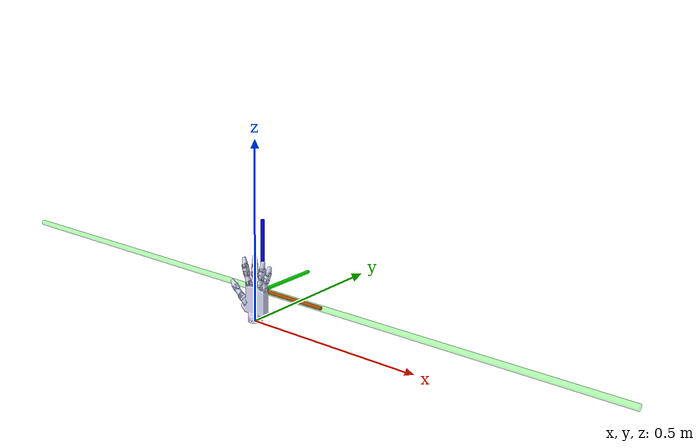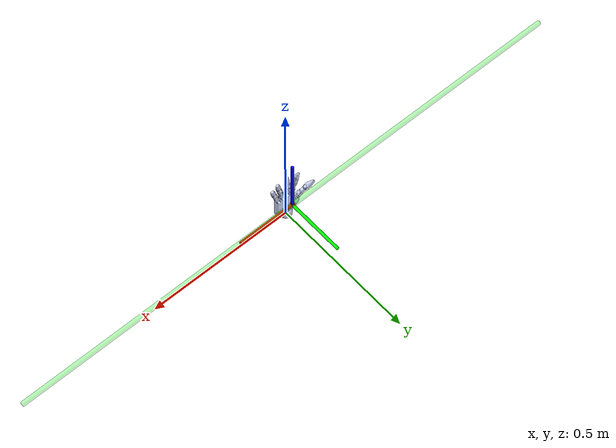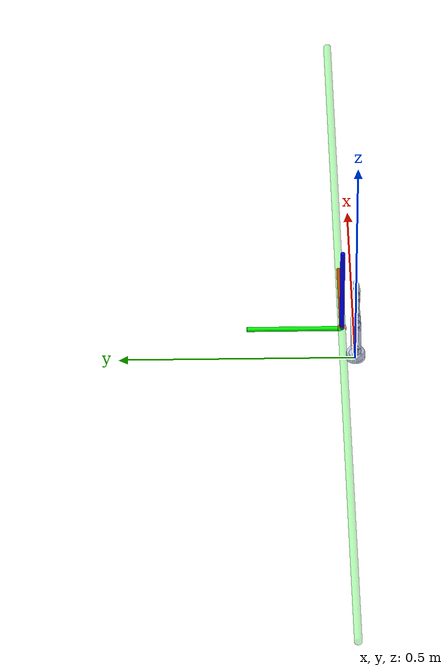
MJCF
<mujoco model="hand_right_sim">
    <compiler angle="radian" meshdir="/home/kavin/Documents/RosProjects/robot_ws/src/hand_right_sim/meshes/" />

    <default>
        <geom density="5.0" />
        <default class="joint">
            <joint axis="1 0 0" range="-3.14 3.14" limited="true" damping="0.8" armature="0.0002" frictionloss="0.01"/>
            <position kp="8" forcerange="-2 2" forcelimited="true"/>
        </default>
    </default>

    <size njmax="500" nconmax="100" />
    <asset>
        <mesh name="palm_right" file="palm_right.STL" />
        <mesh name="finger_11_right" file="finger_11_right.STL" />
        <mesh name="finger_12_right" file="finger_12_right.STL" />
        <mesh name="finger_13_right" file="finger_13_right.STL" />
        <mesh name="finger_14_right" file="finger_14_right.STL" />
        <mesh name="finger_21_right" file="finger_21_right.STL" />
        <mesh name="finger_22_right" file="finger_22_right.STL" />
        <mesh name="finger_23_right" file="finger_23_right.STL" />
        <mesh name="finger_31_right" file="finger_31_right.STL" />
        <mesh name="finger_32_right" file="finger_32_right.STL" />
        <mesh name="finger_33_right" file="finger_33_right.STL" />
        <mesh name="finger_41_right" file="finger_41_right.STL" />
        <mesh name="finger_42_right" file="finger_42_right.STL" />
        <mesh name="finger_43_right" file="finger_43_right.STL" />
        <mesh name="finger_51_right" file="finger_51_right.STL" />
        <mesh name="finger_52_right" file="finger_52_right.STL" />
        <mesh name="finger_53_right" file="finger_53_right.STL" />

    </asset>
    <worldbody>
        <body name="palm_right">
            <body name="eef" pos="0 0.03 0.08" >
                <site name="grip_site" pos="0 0 0" size="0.01 0.01 0.01" rgba="1 0 0 0.5" type="sphere" group="1"/>
                <site name="ee_x" pos="0.1 0 0" size="0.005 .1"  quat="0.707105  0 0.707108 0 " rgba="1 0 0 1" type="cylinder" group="1"/>
                <site name="ee_y" pos="0 0.1 0" size="0.005 .1" quat="0.707105 0.707108 0 0" rgba="0 1 0 1" type="cylinder" group="1"/>
                <site name="ee_z" pos="0 0 0.1" size="0.005 .1" quat="1 0 0 0" rgba="0 0 1 1" type="cylinder" group="1"/>
                <site name="grip_site_cylinder" pos="0 0 0" size="0.008 1" quat="0.707105  0 0.707108 0 " rgba="0 1 0 0.3" type="cylinder" group="1"/>
            </body>

            <geom type="mesh" contype="0" conaffinity="0" group="1" rgba="0.792157 0.819608 0.933333 1" mesh="palm_right" />
            <geom type="mesh" rgba="0.792157 0.819608 0.933333 1" mesh="palm_right" />
            <body name="finger_11_right" pos="-0.033156 0 0.046854" quat="-0.016518 0.473908 -0.0306641 -0.879885">
                <inertial pos="0 0 0.00296384" quat="0.707107 0 0 0.707107" mass="0.00158261" diaginertia="6.47978e-08 5.66929e-08 5.56708e-08" />
                <joint class="joint" name="j_11_right" />
                <geom type="mesh" contype="0" conaffinity="0" group="1" rgba="0.792157 0.819608 0.933333 1" mesh="finger_11_right" />
                <geom type="mesh" rgba="0.792157 0.819608 0.933333 1" mesh="finger_11_right" />
                <body name="finger_12_right" pos="0 0 0.005" quat="0.997871 0 0 -0.0652237">
                    <inertial pos="3.05329e-11 9.19322e-11 0.00925016" quat="0.707107 0 0 0.707107" mass="0.00237615" diaginertia="1.18675e-07 1.15819e-07 1.06634e-07" />
                    <joint class="joint" name="j_12_right" axis="0 0 -1" />
                    <geom type="mesh" contype="0" conaffinity="0" group="1" rgba="0.792157 0.819608 0.933333 1" mesh="finger_12_right" />
                    <geom type="mesh" rgba="0.792157 0.819608 0.933333 1" mesh="finger_12_right" />
                    <body name="finger_13_right" pos="0 0 0.0175" quat="0.998171 0.0604581 0 0">
                        <inertial pos="3.32826e-08 -2.58391e-07 0.0134786" quat="0.70734 -4.62782e-06 4.62477e-06 0.706874" mass="0.00477507" diaginertia="5.13037e-07 5.06539e-07 1.11818e-07" />
                        <joint class="joint" name="j_13_right" />
                        <geom type="mesh" contype="0" conaffinity="0" group="1" rgba="0.792157 0.819608 0.933333 1" mesh="finger_13_right" />
                        <geom type="mesh" rgba="0.792157 0.819608 0.933333 1" mesh="finger_13_right" />
                        <body name="finger_14_right" pos="0 0 0.027" quat="0.999977 0.00681395 0 0">
                            <inertial pos="1.25821e-05 -0.000148496 0.0147394" quat="0.704726 0.00742858 -0.00610786 0.709414" mass="0.00459559" diaginertia="3.58607e-07 3.47268e-07 1.55218e-07" />
                            <joint class="joint" name="j_14_right" />
                            <geom type="mesh" contype="0" conaffinity="0" group="1" rgba="0.792157 0.819608 0.933333 1" mesh="finger_14_right" />
                            <geom type="mesh" rgba="0.792157 0.819608 0.933333 1" mesh="finger_14_right" />
                        </body>
                    </body>
                </body>
            </body>
            <body name="finger_21_right" pos="-0.02313 -2.8663e-05 0.10261" quat="-0.00170588 0.14653 -0.0114914 -0.989138">
                <inertial pos="-3.24188e-08 -2.51413e-07 0.0147548" quat="0.706869 4.57171e-06 -4.57478e-06 0.707344" mass="0.00477507" diaginertia="5.13037e-07 5.06539e-07 1.11818e-07" />
                <joint class="joint" name="j_21_right" />
                <geom type="mesh" contype="0" conaffinity="0" group="1" rgba="0.792157 0.819608 0.933333 1" mesh="finger_21_right" />
                <geom type="mesh" rgba="0.792157 0.819608 0.933333 1" mesh="finger_21_right" />
                <body name="finger_22_right" pos="0 0 0.028233" quat="0.999999 0.001304 0 0">
                    <inertial pos="0 0 0.0105" mass="0.00239726" diaginertia="1.69655e-07 1.65763e-07 9.58619e-08" />
                    <joint class="joint" name="j_22_right" />
                    <geom type="mesh" contype="0" conaffinity="0" group="1" rgba="0.792157 0.819608 0.933333 1" mesh="finger_22_right" />
                    <geom type="mesh" rgba="0.792157 0.819608 0.933333 1" mesh="finger_22_right" />
                    <body name="finger_23_right" pos="0 0 0.021" quat="0.999026 0.0441192 0 0">
                        <inertial pos="1.85149e-05 -3.04051e-05 0.0092181" quat="0.713348 0.00165559 0.000484126 0.700808" mass="0.00351083" diaginertia="2.40712e-07 2.34318e-07 7.61094e-08" />
                        <joint class="joint" name="j_23_right" />
                        <geom type="mesh" contype="0" conaffinity="0" group="1" rgba="0.792157 0.819608 0.933333 1" mesh="finger_23_right" />
                        <geom type="mesh" rgba="0.792157 0.819608 0.933333 1" mesh="finger_23_right" />
                    </body>
                </body>
            </body>
            <body name="finger_31_right" pos="-0.003285 -4.5506e-05 0.10551" quat="-3.67258e-06 -6.77539e-08 -0.0184455 -0.99983">
                <inertial pos="-3.39863e-08 -2.51284e-07 0.0147548" quat="0.706871 4.57009e-06 -4.57313e-06 0.707342" mass="0.00477507" diaginertia="5.13037e-07 5.06539e-07 1.11818e-07" />
                <joint class="joint" name="j_31_right" />
                <geom type="mesh" contype="0" conaffinity="0" group="1" rgba="0.792157 0.819608 0.933333 1" mesh="finger_31_right" />
                <geom type="mesh" rgba="0.792157 0.819608 0.933333 1" mesh="finger_31_right" />
                <body name="finger_32_right" pos="0 0 0.028233" quat="0.999949 0.0101153 0 0">
                    <inertial pos="0 0 0.0125" mass="0.00316954" diaginertia="2.43247e-07 2.35819e-07 1.2078e-07" />
                    <joint class="joint" name="j_32_right" />
                    <geom type="mesh" contype="0" conaffinity="0" group="1" rgba="0.792157 0.819608 0.933333 1" mesh="finger_32_right" />
                    <geom type="mesh" rgba="0.792157 0.819608 0.933333 1" mesh="finger_32_right" />
                    <body name="finger_33_right" pos="0 0 0.025" quat="0.999542 -0.0302699 0 0">
                        <inertial pos="1.96253e-05 -3.05034e-05 0.0109935" quat="0.713622 0.0013122 0.00048852 0.70053" mass="0.00407939" diaginertia="3.4499e-07 3.3759e-07 9.02118e-08" />
                        <joint class="joint" name="j_33_right" />
                        <geom type="mesh" contype="0" conaffinity="0" group="1" rgba="0.792157 0.819608 0.933333 1" mesh="finger_33_right" />
                        <geom type="mesh" rgba="0.792157 0.819608 0.933333 1" mesh="finger_33_right" />
                    </body>
                </body>
            </body>
            <body name="finger_41_right" pos="0.015838 -1.4117e-05 0.10369" quat="-0.000562628 0.097747 0.00569144 0.995195">
                <inertial pos="-3.23356e-08 -2.51413e-07 0.0147548" quat="0.706869 4.5718e-06 -4.57488e-06 0.707344" mass="0.00477507" diaginertia="5.13037e-07 5.06539e-07 1.11818e-07" />
                <joint class="joint" name="j_41_right" />
                <geom type="mesh" contype="0" conaffinity="0" group="1" rgba="0.792157 0.819608 0.933333 1" mesh="finger_41_right" />
                <geom type="mesh" rgba="0.792157 0.819608 0.933333 1" mesh="finger_41_right" />
                <body name="finger_42_right" pos="0 0 0.028233" quat="0.999279 -0.0379669 0 0">
                    <inertial pos="0 0 0.011" mass="0.00259033" diaginertia="1.86013e-07 1.81238e-07 1.02092e-07" />
                    <joint class="joint" name="j_42_right" />
                    <geom type="mesh" contype="0" conaffinity="0" group="1" rgba="0.792157 0.819608 0.933333 1" mesh="finger_42_right" />
                    <geom type="mesh" rgba="0.792157 0.819608 0.933333 1" mesh="finger_42_right" />
                    <body name="finger_43_right" pos="0 0 0.022" quat="0.999968 0.00801491 0 0">
                        <inertial pos="1.83811e-05 -3.04115e-05 0.0092181" quat="0.713529 0.00165383 0.000482434 0.700624" mass="0.00351084" diaginertia="2.40711e-07 2.34319e-07 7.61093e-08" />
                        <joint class="joint" name="j_43_right" />
                        <geom type="mesh" contype="0" conaffinity="0" group="1" rgba="0.792157 0.819608 0.933333 1" mesh="finger_43_right" />
                        <geom type="mesh" rgba="0.792157 0.819608 0.933333 1" mesh="finger_43_right" />
                    </body>
                </body>
            </body>
            <body name="finger_51_right" pos="0.032204 7.2479e-05 0.099742" quat="0.00415502 0.141408 -0.0291001 0.989515">
                <inertial pos="-3.37018e-08 -2.63901e-07 0.0147548" quat="0.706874 4.61041e-06 -4.61345e-06 0.70734" mass="0.00477507" diaginertia="5.13037e-07 5.06539e-07 1.11818e-07" />
                <joint class="joint" name="j_51_right" />
                <geom type="mesh" contype="0" conaffinity="0" group="1" rgba="0.792157 0.819608 0.933333 1" mesh="finger_51_right" />
                <geom type="mesh" rgba="0.792157 0.819608 0.933333 1" mesh="finger_51_right" />
                <body name="finger_52_right" pos="0 0 0.028233" quat="0.998235 0.05939 0 0">
                    <inertial pos="0 0 0.01" mass="0.00220419" diaginertia="1.54494e-07 1.51487e-07 8.96323e-08" />
                    <joint class="joint" name="j_52_right" />
                    <geom type="mesh" contype="0" conaffinity="0" group="1" rgba="0.792157 0.819608 0.933333 1" mesh="finger_52_right" />
                    <geom type="mesh" rgba="0.792157 0.819608 0.933333 1" mesh="finger_52_right" />
                    <body name="finger_53_right" pos="0 0 0.02" quat="0.99979 -0.0204711 0 0">
                        <inertial pos="1.7743e-05 -3.12533e-05 0.00785414" quat="0.712265 0.0020625 0.000429525 0.701908" mass="0.00308471" diaginertia="1.78799e-07 1.73044e-07 6.55991e-08" />
                        <joint class="joint" name="j_53_right" />
                        <geom type="mesh" contype="0" conaffinity="0" group="1" rgba="0.792157 0.819608 0.933333 1" mesh="finger_53_right" />
                        <geom type="mesh" rgba="0.792157 0.819608 0.933333 1" mesh="finger_53_right" />
                    </body>
                </body>
            </body>
        </body>
    </worldbody>

    <contact>
        <exclude body1="palm_right" body2="finger_11_right"/>
        <exclude body1="palm_right" body2="finger_12_right"/>
        <exclude body1="palm_right" body2="finger_21_right"/>
        <exclude body1="palm_right" body2="finger_31_right"/>
        <exclude body1="palm_right" body2="finger_41_right"/>
        <exclude body1="palm_right" body2="finger_51_right"/>
    </contact>

    <tendon>
        <fixed name="j_20_right">
          <joint joint="j_22_right" coef="1"/>
          <joint joint="j_23_right" coef="1"/>
        </fixed>
        <fixed name="j_30_right">
          <joint joint="j_32_right" coef="1"/>
          <joint joint="j_33_right" coef="1"/>
        </fixed>
        <fixed name="j_40_right">
          <joint joint="j_42_right" coef="1"/>
          <joint joint="j_43_right" coef="1"/>
        </fixed>
        <fixed name="j_50_right">
          <joint joint="j_52_right" coef="1"/>
          <joint joint="j_53_right" coef="1"/>
        </fixed>
    </tendon>
    <actuator>
        <position class="joint" name="j11_right_T" joint="j_11_right" ctrllimited="true" ctrlrange="0 1.57" />
        <position class="joint" name="j12_right_T" joint="j_12_right" ctrllimited="true" ctrlrange="0 1.8" />
        <position class="joint" name="j13_right_T" joint="j_13_right" ctrllimited="true" ctrlrange="0 1.57"/>
        <position class="joint" name="j14_right_T" joint="j_14_right" ctrllimited="true" ctrlrange="0 1.57"/>
        <position class="joint" name="j21_right_T" joint="j_21_right" ctrllimited="true" ctrlrange="0 1.57" />
        <position class="joint" name="j20_right_T" tendon="j_20_right" ctrllimited="true" ctrlrange="0 2.14" />
        <position class="joint" name="j31_right_T" joint="j_31_right" ctrllimited="true" ctrlrange="0 1.57" />
        <position class="joint" name="j30_right_T" tendon="j_30_right" ctrllimited="true" ctrlrange="0 2.14" />
        <position class="joint" name="j41_right_T" joint="j_41_right" ctrllimited="true" ctrlrange="0 1.57" />
        <position class="joint" name="j40_right_T" tendon="j_40_right" ctrllimited="true" ctrlrange="0 2.14" />
        <position class="joint" name="j51_right_T" joint="j_51_right" ctrllimited="true" ctrlrange="0 1.57" />
        <position class="joint" name="j50_right_T" tendon="j_50_right" ctrllimited="true" ctrlrange="0 2.14" />
    </actuator>
</mujoco>
